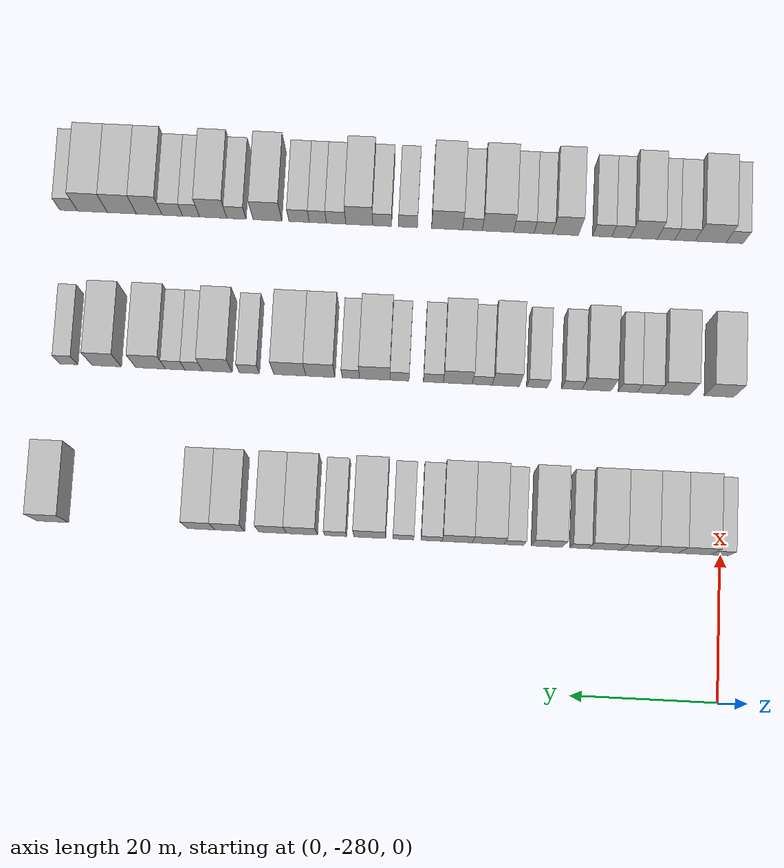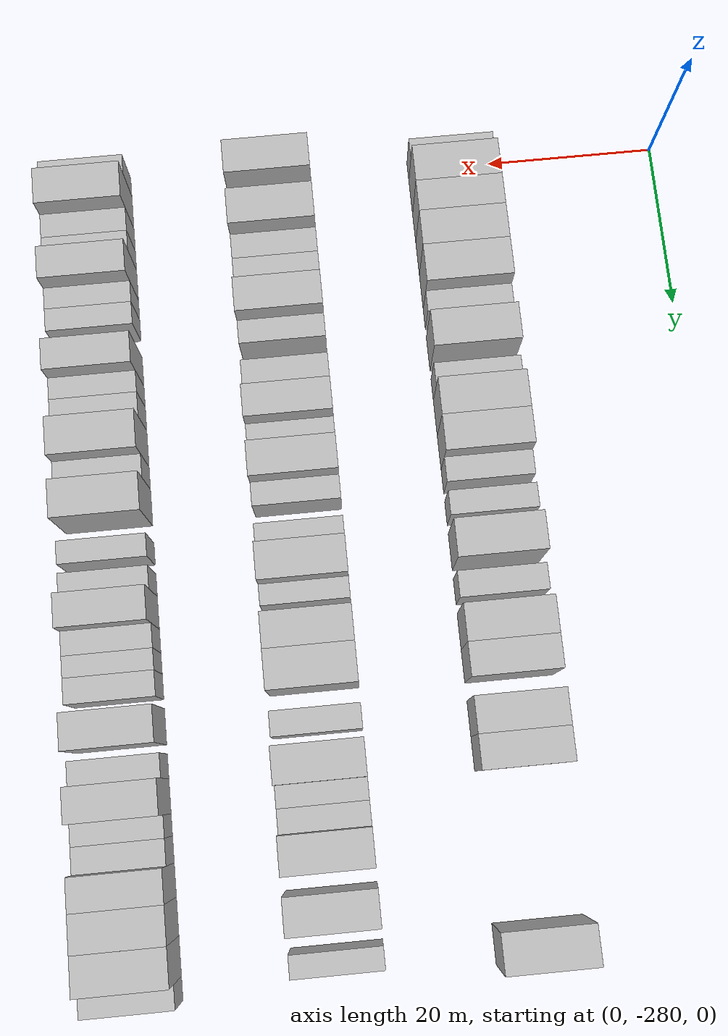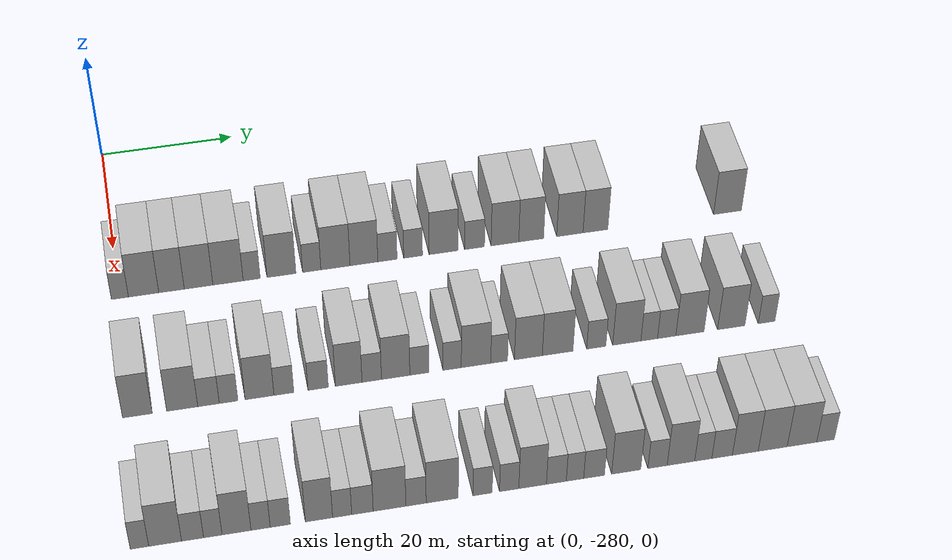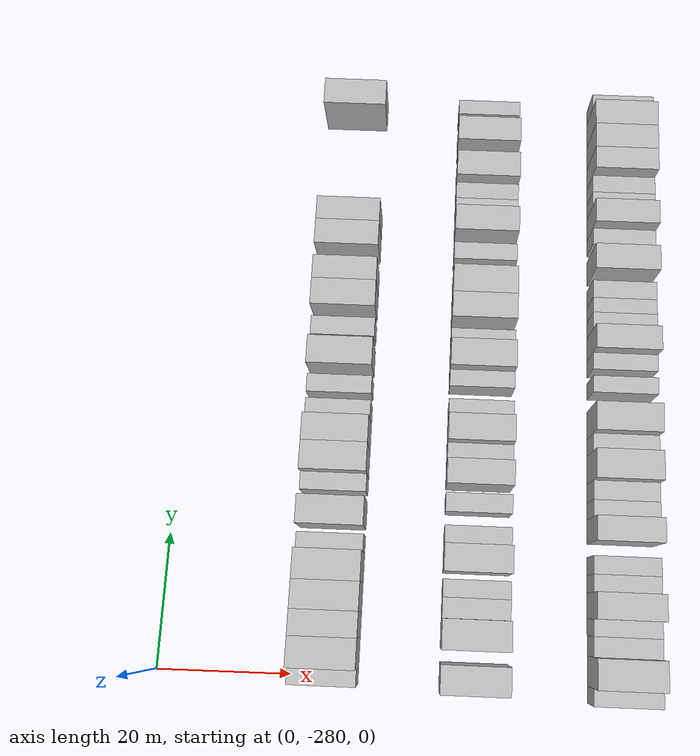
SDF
<sdf version="1.6">
 <world name="default">
  <model name="building_23">
   <static>1</static>
   <pose>25.0000 -279.8532 0 0.000000 0.000000 0.000000</pose>
   <link name="link">
    <pose>0 0 3.00 0 0 0</pose>
    <collision name="collision"><geometry><box><size>10.0000 2.4691 6.0000</size></box></geometry></collision>
    <visual name="visual">
     <cast_shadows>0</cast_shadows>
     <geometry><box><size>10.0000 2.4691 6.0000</size></box></geometry>
     <material>
      <script>
       <uri>model://HANNAS_wall/materials/scripts</uri>
       <uri>model://HANNAS_wall/materials/textures</uri>
       <name>vrc/HANNAS_wall</name>
      </script>
     </material>
    </visual>
   </link>
  </model>
  <model name="building_24">
   <static>1</static>
   <pose>25.0000 -276.4193 0 0.000000 0.000000 0.000000</pose>
   <link name="link">
    <pose>0 0 4.50 0 0 0</pose>
    <collision name="collision"><geometry><box><size>10.0000 4.3988 9.0000</size></box></geometry></collision>
    <visual name="visual">
     <cast_shadows>0</cast_shadows>
     <geometry><box><size>10.0000 4.3988 9.0000</size></box></geometry>
     <material>
      <script>
       <uri>model://HANNAS_wall/materials/scripts</uri>
       <uri>model://HANNAS_wall/materials/textures</uri>
       <name>vrc/HANNAS_wall</name>
      </script>
     </material>
    </visual>
   </link>
  </model>
  <model name="building_25">
   <static>1</static>
   <pose>25.0000 -272.3590 0 0.000000 0.000000 0.000000</pose>
   <link name="link">
    <pose>0 0 4.50 0 0 0</pose>
    <collision name="collision"><geometry><box><size>10.0000 3.7218 9.0000</size></box></geometry></collision>
    <visual name="visual">
     <cast_shadows>0</cast_shadows>
     <geometry><box><size>10.0000 3.7218 9.0000</size></box></geometry>
     <material>
      <script>
       <uri>model://HANNAS_wall/materials/scripts</uri>
       <uri>model://HANNAS_wall/materials/textures</uri>
       <name>vrc/HANNAS_wall</name>
      </script>
     </material>
    </visual>
   </link>
  </model>
  <model name="building_26">
   <static>1</static>
   <pose>25.0000 -268.4085 0 0.000000 0.000000 0.000000</pose>
   <link name="link">
    <pose>0 0 4.50 0 0 0</pose>
    <collision name="collision"><geometry><box><size>10.0000 4.1792 9.0000</size></box></geometry></collision>
    <visual name="visual">
     <cast_shadows>0</cast_shadows>
     <geometry><box><size>10.0000 4.1792 9.0000</size></box></geometry>
     <material>
      <script>
       <uri>model://HANNAS_wall/materials/scripts</uri>
       <uri>model://HANNAS_wall/materials/textures</uri>
       <name>vrc/HANNAS_wall</name>
      </script>
     </material>
    </visual>
   </link>
  </model>
  <model name="building_27">
   <static>1</static>
   <pose>25.0000 -264.0996 0 0.000000 0.000000 0.000000</pose>
   <link name="link">
    <pose>0 0 4.50 0 0 0</pose>
    <collision name="collision"><geometry><box><size>10.0000 4.4385 9.0000</size></box></geometry></collision>
    <visual name="visual">
     <cast_shadows>0</cast_shadows>
     <geometry><box><size>10.0000 4.4385 9.0000</size></box></geometry>
     <material>
      <script>
       <uri>model://HANNAS_wall/materials/scripts</uri>
       <uri>model://HANNAS_wall/materials/textures</uri>
       <name>vrc/HANNAS_wall</name>
      </script>
     </material>
    </visual>
   </link>
  </model>
  <model name="building_28">
   <static>1</static>
   <pose>25.0000 -260.6279 0 0.000000 0.000000 0.000000</pose>
   <link name="link">
    <pose>0 0 3.00 0 0 0</pose>
    <collision name="collision"><geometry><box><size>10.0000 2.5049 6.0000</size></box></geometry></collision>
    <visual name="visual">
     <cast_shadows>0</cast_shadows>
     <geometry><box><size>10.0000 2.5049 6.0000</size></box></geometry>
     <material>
      <script>
       <uri>model://HANNAS_wall/materials/scripts</uri>
       <uri>model://HANNAS_wall/materials/textures</uri>
       <name>vrc/HANNAS_wall</name>
      </script>
     </material>
    </visual>
   </link>
  </model>
  <model name="building_29">
   <static>1</static>
   <pose>25.0000 -256.2432 0 0.000000 0.000000 0.000000</pose>
   <link name="link">
    <pose>0 0 4.50 0 0 0</pose>
    <collision name="collision"><geometry><box><size>10.0000 4.2644 9.0000</size></box></geometry></collision>
    <visual name="visual">
     <cast_shadows>0</cast_shadows>
     <geometry><box><size>10.0000 4.2644 9.0000</size></box></geometry>
     <material>
      <script>
       <uri>model://HANNAS_wall/materials/scripts</uri>
       <uri>model://HANNAS_wall/materials/textures</uri>
       <name>vrc/HANNAS_wall</name>
      </script>
     </material>
    </visual>
   </link>
  </model>
  <model name="building_30">
   <static>1</static>
   <pose>25.0000 -251.7612 0 0.000000 0.000000 0.000000</pose>
   <link name="link">
    <pose>0 0 3.00 0 0 0</pose>
    <collision name="collision"><geometry><box><size>10.0000 2.6998 6.0000</size></box></geometry></collision>
    <visual name="visual">
     <cast_shadows>0</cast_shadows>
     <geometry><box><size>10.0000 2.6998 6.0000</size></box></geometry>
     <material>
      <script>
       <uri>model://HANNAS_wall/materials/scripts</uri>
       <uri>model://HANNAS_wall/materials/textures</uri>
       <name>vrc/HANNAS_wall</name>
      </script>
     </material>
    </visual>
   </link>
  </model>
  <model name="building_31">
   <static>1</static>
   <pose>25.0000 -248.2509 0 0.000000 0.000000 0.000000</pose>
   <link name="link">
    <pose>0 0 4.50 0 0 0</pose>
    <collision name="collision"><geometry><box><size>10.0000 4.3207 9.0000</size></box></geometry></collision>
    <visual name="visual">
     <cast_shadows>0</cast_shadows>
     <geometry><box><size>10.0000 4.3207 9.0000</size></box></geometry>
     <material>
      <script>
       <uri>model://HANNAS_wall/materials/scripts</uri>
       <uri>model://HANNAS_wall/materials/textures</uri>
       <name>vrc/HANNAS_wall</name>
      </script>
     </material>
    </visual>
   </link>
  </model>
  <model name="building_32">
   <static>1</static>
   <pose>25.0000 -244.0177 0 0.000000 0.000000 0.000000</pose>
   <link name="link">
    <pose>0 0 4.50 0 0 0</pose>
    <collision name="collision"><geometry><box><size>10.0000 4.1457 9.0000</size></box></geometry></collision>
    <visual name="visual">
     <cast_shadows>0</cast_shadows>
     <geometry><box><size>10.0000 4.1457 9.0000</size></box></geometry>
     <material>
      <script>
       <uri>model://HANNAS_wall/materials/scripts</uri>
       <uri>model://HANNAS_wall/materials/textures</uri>
       <name>vrc/HANNAS_wall</name>
      </script>
     </material>
    </visual>
   </link>
  </model>
  <model name="building_33">
   <static>1</static>
   <pose>25.0000 -240.5104 0 0.000000 0.000000 0.000000</pose>
   <link name="link">
    <pose>0 0 3.00 0 0 0</pose>
    <collision name="collision"><geometry><box><size>10.0000 2.8689 6.0000</size></box></geometry></collision>
    <visual name="visual">
     <cast_shadows>0</cast_shadows>
     <geometry><box><size>10.0000 2.8689 6.0000</size></box></geometry>
     <material>
      <script>
       <uri>model://HANNAS_wall/materials/scripts</uri>
       <uri>model://HANNAS_wall/materials/textures</uri>
       <name>vrc/HANNAS_wall</name>
      </script>
     </material>
    </visual>
   </link>
  </model>
  <model name="building_34">
   <static>1</static>
   <pose>25.0000 -236.6710 0 0.000000 0.000000 0.000000</pose>
   <link name="link">
    <pose>0 0 3.00 0 0 0</pose>
    <collision name="collision"><geometry><box><size>10.0000 2.8099 6.0000</size></box></geometry></collision>
    <visual name="visual">
     <cast_shadows>0</cast_shadows>
     <geometry><box><size>10.0000 2.8099 6.0000</size></box></geometry>
     <material>
      <script>
       <uri>model://HANNAS_wall/materials/scripts</uri>
       <uri>model://HANNAS_wall/materials/textures</uri>
       <name>vrc/HANNAS_wall</name>
      </script>
     </material>
    </visual>
   </link>
  </model>
  <model name="building_35">
   <static>1</static>
   <pose>25.0000 -232.0984 0 0.000000 0.000000 0.000000</pose>
   <link name="link">
    <pose>0 0 4.50 0 0 0</pose>
    <collision name="collision"><geometry><box><size>10.0000 4.3355 9.0000</size></box></geometry></collision>
    <visual name="visual">
     <cast_shadows>0</cast_shadows>
     <geometry><box><size>10.0000 4.3355 9.0000</size></box></geometry>
     <material>
      <script>
       <uri>model://HANNAS_wall/materials/scripts</uri>
       <uri>model://HANNAS_wall/materials/textures</uri>
       <name>vrc/HANNAS_wall</name>
      </script>
     </material>
    </visual>
   </link>
  </model>
  <model name="building_36">
   <static>1</static>
   <pose>25.0000 -227.4317 0 0.000000 0.000000 0.000000</pose>
   <link name="link">
    <pose>0 0 3.00 0 0 0</pose>
    <collision name="collision"><geometry><box><size>10.0000 2.9977 6.0000</size></box></geometry></collision>
    <visual name="visual">
     <cast_shadows>0</cast_shadows>
     <geometry><box><size>10.0000 2.9977 6.0000</size></box></geometry>
     <material>
      <script>
       <uri>model://HANNAS_wall/materials/scripts</uri>
       <uri>model://HANNAS_wall/materials/textures</uri>
       <name>vrc/HANNAS_wall</name>
      </script>
     </material>
    </visual>
   </link>
  </model>
  <model name="building_37">
   <static>1</static>
   <pose>25.0000 -222.8329 0 0.000000 0.000000 0.000000</pose>
   <link name="link">
    <pose>0 0 4.50 0 0 0</pose>
    <collision name="collision"><geometry><box><size>10.0000 4.2000 9.0000</size></box></geometry></collision>
    <visual name="visual">
     <cast_shadows>0</cast_shadows>
     <geometry><box><size>10.0000 4.2000 9.0000</size></box></geometry>
     <material>
      <script>
       <uri>model://HANNAS_wall/materials/scripts</uri>
       <uri>model://HANNAS_wall/materials/textures</uri>
       <name>vrc/HANNAS_wall</name>
      </script>
     </material>
    </visual>
   </link>
  </model>
  <model name="building_38">
   <static>1</static>
   <pose>25.0000 -218.8481 0 0.000000 0.000000 0.000000</pose>
   <link name="link">
    <pose>0 0 4.50 0 0 0</pose>
    <collision name="collision"><geometry><box><size>10.0000 3.7694 9.0000</size></box></geometry></collision>
    <visual name="visual">
     <cast_shadows>0</cast_shadows>
     <geometry><box><size>10.0000 3.7694 9.0000</size></box></geometry>
     <material>
      <script>
       <uri>model://HANNAS_wall/materials/scripts</uri>
       <uri>model://HANNAS_wall/materials/textures</uri>
       <name>vrc/HANNAS_wall</name>
      </script>
     </material>
    </visual>
   </link>
  </model>
  <model name="building_39">
   <static>1</static>
   <pose>25.0000 -212.9530 0 0.000000 0.000000 0.000000</pose>
   <link name="link">
    <pose>0 0 4.50 0 0 0</pose>
    <collision name="collision"><geometry><box><size>10.0000 4.0209 9.0000</size></box></geometry></collision>
    <visual name="visual">
     <cast_shadows>0</cast_shadows>
     <geometry><box><size>10.0000 4.0209 9.0000</size></box></geometry>
     <material>
      <script>
       <uri>model://HANNAS_wall/materials/scripts</uri>
       <uri>model://HANNAS_wall/materials/textures</uri>
       <name>vrc/HANNAS_wall</name>
      </script>
     </material>
    </visual>
   </link>
  </model>
  <model name="building_40">
   <static>1</static>
   <pose>25.0000 -209.0470 0 0.000000 0.000000 0.000000</pose>
   <link name="link">
    <pose>0 0 4.50 0 0 0</pose>
    <collision name="collision"><geometry><box><size>10.0000 3.7911 9.0000</size></box></geometry></collision>
    <visual name="visual">
     <cast_shadows>0</cast_shadows>
     <geometry><box><size>10.0000 3.7911 9.0000</size></box></geometry>
     <material>
      <script>
       <uri>model://HANNAS_wall/materials/scripts</uri>
       <uri>model://HANNAS_wall/materials/textures</uri>
       <name>vrc/HANNAS_wall</name>
      </script>
     </material>
    </visual>
   </link>
  </model>
  <model name="building_41">
   <static>1</static>
   <pose>25.0000 -188.6506 0 0.000000 0.000000 0.000000</pose>
   <link name="link">
    <pose>0 0 4.50 0 0 0</pose>
    <collision name="collision"><geometry><box><size>10.0000 4.3338 9.0000</size></box></geometry></collision>
    <visual name="visual">
     <cast_shadows>0</cast_shadows>
     <geometry><box><size>10.0000 4.3338 9.0000</size></box></geometry>
     <material>
      <script>
       <uri>model://HANNAS_wall/materials/scripts</uri>
       <uri>model://HANNAS_wall/materials/textures</uri>
       <name>vrc/HANNAS_wall</name>
      </script>
     </material>
    </visual>
   </link>
  </model>
  <model name="building_209">
   <static>1</static>
   <pose>47.0000 -279.3452 0 0.000000 0.000000 0.000000</pose>
   <link name="link">
    <pose>0 0 4.50 0 0 0</pose>
    <collision name="collision"><geometry><box><size>10.0000 4.1022 9.0000</size></box></geometry></collision>
    <visual name="visual">
     <cast_shadows>0</cast_shadows>
     <geometry><box><size>10.0000 4.1022 9.0000</size></box></geometry>
     <material>
      <script>
       <uri>model://HANNAS_wall/materials/scripts</uri>
       <uri>model://HANNAS_wall/materials/textures</uri>
       <name>vrc/HANNAS_wall</name>
      </script>
     </material>
    </visual>
   </link>
  </model>
  <model name="building_210">
   <static>1</static>
   <pose>47.0000 -273.1323 0 0.000000 0.000000 0.000000</pose>
   <link name="link">
    <pose>0 0 4.50 0 0 0</pose>
    <collision name="collision"><geometry><box><size>10.0000 4.3236 9.0000</size></box></geometry></collision>
    <visual name="visual">
     <cast_shadows>0</cast_shadows>
     <geometry><box><size>10.0000 4.3236 9.0000</size></box></geometry>
     <material>
      <script>
       <uri>model://HANNAS_wall/materials/scripts</uri>
       <uri>model://HANNAS_wall/materials/textures</uri>
       <name>vrc/HANNAS_wall</name>
      </script>
     </material>
    </visual>
   </link>
  </model>
  <model name="building_211">
   <static>1</static>
   <pose>47.0000 -269.4746 0 0.000000 0.000000 0.000000</pose>
   <link name="link">
    <pose>0 0 3.00 0 0 0</pose>
    <collision name="collision"><geometry><box><size>10.0000 2.9919 6.0000</size></box></geometry></collision>
    <visual name="visual">
     <cast_shadows>0</cast_shadows>
     <geometry><box><size>10.0000 2.9919 6.0000</size></box></geometry>
     <material>
      <script>
       <uri>model://HANNAS_wall/materials/scripts</uri>
       <uri>model://HANNAS_wall/materials/textures</uri>
       <name>vrc/HANNAS_wall</name>
      </script>
     </material>
    </visual>
   </link>
  </model>
  <model name="building_212">
   <static>1</static>
   <pose>47.0000 -266.6771 0 0.000000 0.000000 0.000000</pose>
   <link name="link">
    <pose>0 0 3.00 0 0 0</pose>
    <collision name="collision"><geometry><box><size>10.0000 2.6031 6.0000</size></box></geometry></collision>
    <visual name="visual">
     <cast_shadows>0</cast_shadows>
     <geometry><box><size>10.0000 2.6031 6.0000</size></box></geometry>
     <material>
      <script>
       <uri>model://HANNAS_wall/materials/scripts</uri>
       <uri>model://HANNAS_wall/materials/textures</uri>
       <name>vrc/HANNAS_wall</name>
      </script>
     </material>
    </visual>
   </link>
  </model>
  <model name="building_213">
   <static>1</static>
   <pose>47.0000 -262.3510 0 0.000000 0.000000 0.000000</pose>
   <link name="link">
    <pose>0 0 4.50 0 0 0</pose>
    <collision name="collision"><geometry><box><size>10.0000 4.0492 9.0000</size></box></geometry></collision>
    <visual name="visual">
     <cast_shadows>0</cast_shadows>
     <geometry><box><size>10.0000 4.0492 9.0000</size></box></geometry>
     <material>
      <script>
       <uri>model://HANNAS_wall/materials/scripts</uri>
       <uri>model://HANNAS_wall/materials/textures</uri>
       <name>vrc/HANNAS_wall</name>
      </script>
     </material>
    </visual>
   </link>
  </model>
  <model name="building_214">
   <static>1</static>
   <pose>47.0000 -258.9312 0 0.000000 0.000000 0.000000</pose>
   <link name="link">
    <pose>0 0 3.00 0 0 0</pose>
    <collision name="collision"><geometry><box><size>10.0000 2.7904 6.0000</size></box></geometry></collision>
    <visual name="visual">
     <cast_shadows>0</cast_shadows>
     <geometry><box><size>10.0000 2.7904 6.0000</size></box></geometry>
     <material>
      <script>
       <uri>model://HANNAS_wall/materials/scripts</uri>
       <uri>model://HANNAS_wall/materials/textures</uri>
       <name>vrc/HANNAS_wall</name>
      </script>
     </material>
    </visual>
   </link>
  </model>
  <model name="building_215">
   <static>1</static>
   <pose>47.0000 -254.1026 0 0.000000 0.000000 0.000000</pose>
   <link name="link">
    <pose>0 0 3.00 0 0 0</pose>
    <collision name="collision"><geometry><box><size>10.0000 2.8668 6.0000</size></box></geometry></collision>
    <visual name="visual">
     <cast_shadows>0</cast_shadows>
     <geometry><box><size>10.0000 2.8668 6.0000</size></box></geometry>
     <material>
      <script>
       <uri>model://HANNAS_wall/materials/scripts</uri>
       <uri>model://HANNAS_wall/materials/textures</uri>
       <name>vrc/HANNAS_wall</name>
      </script>
     </material>
    </visual>
   </link>
  </model>
  <model name="building_216">
   <static>1</static>
   <pose>47.0000 -249.7837 0 0.000000 0.000000 0.000000</pose>
   <link name="link">
    <pose>0 0 4.50 0 0 0</pose>
    <collision name="collision"><geometry><box><size>10.0000 3.7708 9.0000</size></box></geometry></collision>
    <visual name="visual">
     <cast_shadows>0</cast_shadows>
     <geometry><box><size>10.0000 3.7708 9.0000</size></box></geometry>
     <material>
      <script>
       <uri>model://HANNAS_wall/materials/scripts</uri>
       <uri>model://HANNAS_wall/materials/textures</uri>
       <name>vrc/HANNAS_wall</name>
      </script>
     </material>
    </visual>
   </link>
  </model>
  <model name="building_217">
   <static>1</static>
   <pose>47.0000 -246.5192 0 0.000000 0.000000 0.000000</pose>
   <link name="link">
    <pose>0 0 3.00 0 0 0</pose>
    <collision name="collision"><geometry><box><size>10.0000 2.7583 6.0000</size></box></geometry></collision>
    <visual name="visual">
     <cast_shadows>0</cast_shadows>
     <geometry><box><size>10.0000 2.7583 6.0000</size></box></geometry>
     <material>
      <script>
       <uri>model://HANNAS_wall/materials/scripts</uri>
       <uri>model://HANNAS_wall/materials/textures</uri>
       <name>vrc/HANNAS_wall</name>
      </script>
     </material>
    </visual>
   </link>
  </model>
  <model name="building_218">
   <static>1</static>
   <pose>47.0000 -243.1190 0 0.000000 0.000000 0.000000</pose>
   <link name="link">
    <pose>0 0 4.50 0 0 0</pose>
    <collision name="collision"><geometry><box><size>10.0000 4.0422 9.0000</size></box></geometry></collision>
    <visual name="visual">
     <cast_shadows>0</cast_shadows>
     <geometry><box><size>10.0000 4.0422 9.0000</size></box></geometry>
     <material>
      <script>
       <uri>model://HANNAS_wall/materials/scripts</uri>
       <uri>model://HANNAS_wall/materials/textures</uri>
       <name>vrc/HANNAS_wall</name>
      </script>
     </material>
    </visual>
   </link>
  </model>
  <model name="building_219">
   <static>1</static>
   <pose>47.0000 -239.7254 0 0.000000 0.000000 0.000000</pose>
   <link name="link">
    <pose>0 0 3.00 0 0 0</pose>
    <collision name="collision"><geometry><box><size>10.0000 2.7450 6.0000</size></box></geometry></collision>
    <visual name="visual">
     <cast_shadows>0</cast_shadows>
     <geometry><box><size>10.0000 2.7450 6.0000</size></box></geometry>
     <material>
      <script>
       <uri>model://HANNAS_wall/materials/scripts</uri>
       <uri>model://HANNAS_wall/materials/textures</uri>
       <name>vrc/HANNAS_wall</name>
      </script>
     </material>
    </visual>
   </link>
  </model>
  <model name="building_220">
   <static>1</static>
   <pose>47.0000 -235.0442 0 0.000000 0.000000 0.000000</pose>
   <link name="link">
    <pose>0 0 3.00 0 0 0</pose>
    <collision name="collision"><geometry><box><size>10.0000 2.6172 6.0000</size></box></geometry></collision>
    <visual name="visual">
     <cast_shadows>0</cast_shadows>
     <geometry><box><size>10.0000 2.6172 6.0000</size></box></geometry>
     <material>
      <script>
       <uri>model://HANNAS_wall/materials/scripts</uri>
       <uri>model://HANNAS_wall/materials/textures</uri>
       <name>vrc/HANNAS_wall</name>
      </script>
     </material>
    </visual>
   </link>
  </model>
  <model name="building_221">
   <static>1</static>
   <pose>47.0000 -231.6141 0 0.000000 0.000000 0.000000</pose>
   <link name="link">
    <pose>0 0 4.50 0 0 0</pose>
    <collision name="collision"><geometry><box><size>10.0000 4.2430 9.0000</size></box></geometry></collision>
    <visual name="visual">
     <cast_shadows>0</cast_shadows>
     <geometry><box><size>10.0000 4.2430 9.0000</size></box></geometry>
     <material>
      <script>
       <uri>model://HANNAS_wall/materials/scripts</uri>
       <uri>model://HANNAS_wall/materials/textures</uri>
       <name>vrc/HANNAS_wall</name>
      </script>
     </material>
    </visual>
   </link>
  </model>
  <model name="building_222">
   <static>1</static>
   <pose>47.0000 -228.2855 0 0.000000 0.000000 0.000000</pose>
   <link name="link">
    <pose>0 0 3.00 0 0 0</pose>
    <collision name="collision"><geometry><box><size>10.0000 2.4142 6.0000</size></box></geometry></collision>
    <visual name="visual">
     <cast_shadows>0</cast_shadows>
     <geometry><box><size>10.0000 2.4142 6.0000</size></box></geometry>
     <material>
      <script>
       <uri>model://HANNAS_wall/materials/scripts</uri>
       <uri>model://HANNAS_wall/materials/textures</uri>
       <name>vrc/HANNAS_wall</name>
      </script>
     </material>
    </visual>
   </link>
  </model>
  <model name="building_223">
   <static>1</static>
   <pose>47.0000 -224.0595 0 0.000000 0.000000 0.000000</pose>
   <link name="link">
    <pose>0 0 4.50 0 0 0</pose>
    <collision name="collision"><geometry><box><size>10.0000 4.0378 9.0000</size></box></geometry></collision>
    <visual name="visual">
     <cast_shadows>0</cast_shadows>
     <geometry><box><size>10.0000 4.0378 9.0000</size></box></geometry>
     <material>
      <script>
       <uri>model://HANNAS_wall/materials/scripts</uri>
       <uri>model://HANNAS_wall/materials/textures</uri>
       <name>vrc/HANNAS_wall</name>
      </script>
     </material>
    </visual>
   </link>
  </model>
  <model name="building_224">
   <static>1</static>
   <pose>47.0000 -219.8156 0 0.000000 0.000000 0.000000</pose>
   <link name="link">
    <pose>0 0 4.50 0 0 0</pose>
    <collision name="collision"><geometry><box><size>10.0000 4.4500 9.0000</size></box></geometry></collision>
    <visual name="visual">
     <cast_shadows>0</cast_shadows>
     <geometry><box><size>10.0000 4.4500 9.0000</size></box></geometry>
     <material>
      <script>
       <uri>model://HANNAS_wall/materials/scripts</uri>
       <uri>model://HANNAS_wall/materials/textures</uri>
       <name>vrc/HANNAS_wall</name>
      </script>
     </material>
    </visual>
   </link>
  </model>
  <model name="building_225">
   <static>1</static>
   <pose>47.0000 -214.1924 0 0.000000 0.000000 0.000000</pose>
   <link name="link">
    <pose>0 0 3.00 0 0 0</pose>
    <collision name="collision"><geometry><box><size>10.0000 2.7964 6.0000</size></box></geometry></collision>
    <visual name="visual">
     <cast_shadows>0</cast_shadows>
     <geometry><box><size>10.0000 2.7964 6.0000</size></box></geometry>
     <material>
      <script>
       <uri>model://HANNAS_wall/materials/scripts</uri>
       <uri>model://HANNAS_wall/materials/textures</uri>
       <name>vrc/HANNAS_wall</name>
      </script>
     </material>
    </visual>
   </link>
  </model>
  <model name="building_226">
   <static>1</static>
   <pose>47.0000 -209.7320 0 0.000000 0.000000 0.000000</pose>
   <link name="link">
    <pose>0 0 4.50 0 0 0</pose>
    <collision name="collision"><geometry><box><size>10.0000 4.1245 9.0000</size></box></geometry></collision>
    <visual name="visual">
     <cast_shadows>0</cast_shadows>
     <geometry><box><size>10.0000 4.1245 9.0000</size></box></geometry>
     <material>
      <script>
       <uri>model://HANNAS_wall/materials/scripts</uri>
       <uri>model://HANNAS_wall/materials/textures</uri>
       <name>vrc/HANNAS_wall</name>
      </script>
     </material>
    </visual>
   </link>
  </model>
  <model name="building_227">
   <static>1</static>
   <pose>47.0000 -206.4434 0 0.000000 0.000000 0.000000</pose>
   <link name="link">
    <pose>0 0 3.00 0 0 0</pose>
    <collision name="collision"><geometry><box><size>10.0000 2.4526 6.0000</size></box></geometry></collision>
    <visual name="visual">
     <cast_shadows>0</cast_shadows>
     <geometry><box><size>10.0000 2.4526 6.0000</size></box></geometry>
     <material>
      <script>
       <uri>model://HANNAS_wall/materials/scripts</uri>
       <uri>model://HANNAS_wall/materials/textures</uri>
       <name>vrc/HANNAS_wall</name>
      </script>
     </material>
    </visual>
   </link>
  </model>
  <model name="building_228">
   <static>1</static>
   <pose>47.0000 -203.8687 0 0.000000 0.000000 0.000000</pose>
   <link name="link">
    <pose>0 0 3.00 0 0 0</pose>
    <collision name="collision"><geometry><box><size>10.0000 2.6969 6.0000</size></box></geometry></collision>
    <visual name="visual">
     <cast_shadows>0</cast_shadows>
     <geometry><box><size>10.0000 2.6969 6.0000</size></box></geometry>
     <material>
      <script>
       <uri>model://HANNAS_wall/materials/scripts</uri>
       <uri>model://HANNAS_wall/materials/textures</uri>
       <name>vrc/HANNAS_wall</name>
      </script>
     </material>
    </visual>
   </link>
  </model>
  <model name="building_229">
   <static>1</static>
   <pose>47.0000 -200.4423 0 0.000000 0.000000 0.000000</pose>
   <link name="link">
    <pose>0 0 4.50 0 0 0</pose>
    <collision name="collision"><geometry><box><size>10.0000 4.1558 9.0000</size></box></geometry></collision>
    <visual name="visual">
     <cast_shadows>0</cast_shadows>
     <geometry><box><size>10.0000 4.1558 9.0000</size></box></geometry>
     <material>
      <script>
       <uri>model://HANNAS_wall/materials/scripts</uri>
       <uri>model://HANNAS_wall/materials/textures</uri>
       <name>vrc/HANNAS_wall</name>
      </script>
     </material>
    </visual>
   </link>
  </model>
  <model name="building_230">
   <static>1</static>
   <pose>47.0000 -194.3402 0 0.000000 0.000000 0.000000</pose>
   <link name="link">
    <pose>0 0 4.50 0 0 0</pose>
    <collision name="collision"><geometry><box><size>10.0000 4.0484 9.0000</size></box></geometry></collision>
    <visual name="visual">
     <cast_shadows>0</cast_shadows>
     <geometry><box><size>10.0000 4.0484 9.0000</size></box></geometry>
     <material>
      <script>
       <uri>model://HANNAS_wall/materials/scripts</uri>
       <uri>model://HANNAS_wall/materials/textures</uri>
       <name>vrc/HANNAS_wall</name>
      </script>
     </material>
    </visual>
   </link>
  </model>
  <model name="building_231">
   <static>1</static>
   <pose>47.0000 -189.0806 0 0.000000 0.000000 0.000000</pose>
   <link name="link">
    <pose>0 0 3.00 0 0 0</pose>
    <collision name="collision"><geometry><box><size>10.0000 2.4709 6.0000</size></box></geometry></collision>
    <visual name="visual">
     <cast_shadows>0</cast_shadows>
     <geometry><box><size>10.0000 2.4709 6.0000</size></box></geometry>
     <material>
      <script>
       <uri>model://HANNAS_wall/materials/scripts</uri>
       <uri>model://HANNAS_wall/materials/textures</uri>
       <name>vrc/HANNAS_wall</name>
      </script>
     </material>
    </visual>
   </link>
  </model>
  <model name="building_398">
   <static>1</static>
   <pose>69.0000 -281.1050 0 0.000000 0.000000 0.000000</pose>
   <link name="link">
    <pose>0 0 3.00 0 0 0</pose>
    <collision name="collision"><geometry><box><size>10.0000 2.4213 6.0000</size></box></geometry></collision>
    <visual name="visual">
     <cast_shadows>0</cast_shadows>
     <geometry><box><size>10.0000 2.4213 6.0000</size></box></geometry>
     <material>
      <script>
       <uri>model://HANNAS_wall/materials/scripts</uri>
       <uri>model://HANNAS_wall/materials/textures</uri>
       <name>vrc/HANNAS_wall</name>
      </script>
     </material>
    </visual>
   </link>
  </model>
  <model name="building_399">
   <static>1</static>
   <pose>69.0000 -277.7272 0 0.000000 0.000000 0.000000</pose>
   <link name="link">
    <pose>0 0 4.50 0 0 0</pose>
    <collision name="collision"><geometry><box><size>10.0000 4.3344 9.0000</size></box></geometry></collision>
    <visual name="visual">
     <cast_shadows>0</cast_shadows>
     <geometry><box><size>10.0000 4.3344 9.0000</size></box></geometry>
     <material>
      <script>
       <uri>model://HANNAS_wall/materials/scripts</uri>
       <uri>model://HANNAS_wall/materials/textures</uri>
       <name>vrc/HANNAS_wall</name>
      </script>
     </material>
    </visual>
   </link>
  </model>
  <model name="building_400">
   <static>1</static>
   <pose>69.0000 -274.1078 0 0.000000 0.000000 0.000000</pose>
   <link name="link">
    <pose>0 0 3.00 0 0 0</pose>
    <collision name="collision"><geometry><box><size>10.0000 2.9043 6.0000</size></box></geometry></collision>
    <visual name="visual">
     <cast_shadows>0</cast_shadows>
     <geometry><box><size>10.0000 2.9043 6.0000</size></box></geometry>
     <material>
      <script>
       <uri>model://HANNAS_wall/materials/scripts</uri>
       <uri>model://HANNAS_wall/materials/textures</uri>
       <name>vrc/HANNAS_wall</name>
      </script>
     </material>
    </visual>
   </link>
  </model>
  <model name="building_401">
   <static>1</static>
   <pose>69.0000 -271.4309 0 0.000000 0.000000 0.000000</pose>
   <link name="link">
    <pose>0 0 3.00 0 0 0</pose>
    <collision name="collision"><geometry><box><size>10.0000 2.4497 6.0000</size></box></geometry></collision>
    <visual name="visual">
     <cast_shadows>0</cast_shadows>
     <geometry><box><size>10.0000 2.4497 6.0000</size></box></geometry>
     <material>
      <script>
       <uri>model://HANNAS_wall/materials/scripts</uri>
       <uri>model://HANNAS_wall/materials/textures</uri>
       <name>vrc/HANNAS_wall</name>
      </script>
     </material>
    </visual>
   </link>
  </model>
  <model name="building_402">
   <static>1</static>
   <pose>69.0000 -268.2842 0 0.000000 0.000000 0.000000</pose>
   <link name="link">
    <pose>0 0 4.50 0 0 0</pose>
    <collision name="collision"><geometry><box><size>10.0000 3.8438 9.0000</size></box></geometry></collision>
    <visual name="visual">
     <cast_shadows>0</cast_shadows>
     <geometry><box><size>10.0000 3.8438 9.0000</size></box></geometry>
     <material>
      <script>
       <uri>model://HANNAS_wall/materials/scripts</uri>
       <uri>model://HANNAS_wall/materials/textures</uri>
       <name>vrc/HANNAS_wall</name>
      </script>
     </material>
    </visual>
   </link>
  </model>
  <model name="building_403">
   <static>1</static>
   <pose>69.0000 -265.0827 0 0.000000 0.000000 0.000000</pose>
   <link name="link">
    <pose>0 0 3.00 0 0 0</pose>
    <collision name="collision"><geometry><box><size>10.0000 2.5592 6.0000</size></box></geometry></collision>
    <visual name="visual">
     <cast_shadows>0</cast_shadows>
     <geometry><box><size>10.0000 2.5592 6.0000</size></box></geometry>
     <material>
      <script>
       <uri>model://HANNAS_wall/materials/scripts</uri>
       <uri>model://HANNAS_wall/materials/textures</uri>
       <name>vrc/HANNAS_wall</name>
      </script>
     </material>
    </visual>
   </link>
  </model>
  <model name="building_404">
   <static>1</static>
   <pose>69.0000 -262.4571 0 0.000000 0.000000 0.000000</pose>
   <link name="link">
    <pose>0 0 3.00 0 0 0</pose>
    <collision name="collision"><geometry><box><size>10.0000 2.6919 6.0000</size></box></geometry></collision>
    <visual name="visual">
     <cast_shadows>0</cast_shadows>
     <geometry><box><size>10.0000 2.6919 6.0000</size></box></geometry>
     <material>
      <script>
       <uri>model://HANNAS_wall/materials/scripts</uri>
       <uri>model://HANNAS_wall/materials/textures</uri>
       <name>vrc/HANNAS_wall</name>
      </script>
     </material>
    </visual>
   </link>
  </model>
  <model name="building_405">
   <static>1</static>
   <pose>69.0000 -257.2832 0 0.000000 0.000000 0.000000</pose>
   <link name="link">
    <pose>0 0 4.50 0 0 0</pose>
    <collision name="collision"><geometry><box><size>10.0000 3.6561 9.0000</size></box></geometry></collision>
    <visual name="visual">
     <cast_shadows>0</cast_shadows>
     <geometry><box><size>10.0000 3.6561 9.0000</size></box></geometry>
     <material>
      <script>
       <uri>model://HANNAS_wall/materials/scripts</uri>
       <uri>model://HANNAS_wall/materials/textures</uri>
       <name>vrc/HANNAS_wall</name>
      </script>
     </material>
    </visual>
   </link>
  </model>
  <model name="building_406">
   <static>1</static>
   <pose>69.0000 -254.1717 0 0.000000 0.000000 0.000000</pose>
   <link name="link">
    <pose>0 0 3.00 0 0 0</pose>
    <collision name="collision"><geometry><box><size>10.0000 2.5669 6.0000</size></box></geometry></collision>
    <visual name="visual">
     <cast_shadows>0</cast_shadows>
     <geometry><box><size>10.0000 2.5669 6.0000</size></box></geometry>
     <material>
      <script>
       <uri>model://HANNAS_wall/materials/scripts</uri>
       <uri>model://HANNAS_wall/materials/textures</uri>
       <name>vrc/HANNAS_wall</name>
      </script>
     </material>
    </visual>
   </link>
  </model>
  <model name="building_407">
   <static>1</static>
   <pose>69.0000 -251.4372 0 0.000000 0.000000 0.000000</pose>
   <link name="link">
    <pose>0 0 3.00 0 0 0</pose>
    <collision name="collision"><geometry><box><size>10.0000 2.9021 6.0000</size></box></geometry></collision>
    <visual name="visual">
     <cast_shadows>0</cast_shadows>
     <geometry><box><size>10.0000 2.9021 6.0000</size></box></geometry>
     <material>
      <script>
       <uri>model://HANNAS_wall/materials/scripts</uri>
       <uri>model://HANNAS_wall/materials/textures</uri>
       <name>vrc/HANNAS_wall</name>
      </script>
     </material>
    </visual>
   </link>
  </model>
  <model name="building_408">
   <static>1</static>
   <pose>69.0000 -247.7794 0 0.000000 0.000000 0.000000</pose>
   <link name="link">
    <pose>0 0 4.50 0 0 0</pose>
    <collision name="collision"><geometry><box><size>10.0000 4.4135 9.0000</size></box></geometry></collision>
    <visual name="visual">
     <cast_shadows>0</cast_shadows>
     <geometry><box><size>10.0000 4.4135 9.0000</size></box></geometry>
     <material>
      <script>
       <uri>model://HANNAS_wall/materials/scripts</uri>
       <uri>model://HANNAS_wall/materials/textures</uri>
       <name>vrc/HANNAS_wall</name>
      </script>
     </material>
    </visual>
   </link>
  </model>
  <model name="building_409">
   <static>1</static>
   <pose>69.0000 -244.1957 0 0.000000 0.000000 0.000000</pose>
   <link name="link">
    <pose>0 0 3.00 0 0 0</pose>
    <collision name="collision"><geometry><box><size>10.0000 2.7539 6.0000</size></box></geometry></collision>
    <visual name="visual">
     <cast_shadows>0</cast_shadows>
     <geometry><box><size>10.0000 2.7539 6.0000</size></box></geometry>
     <material>
      <script>
       <uri>model://HANNAS_wall/materials/scripts</uri>
       <uri>model://HANNAS_wall/materials/textures</uri>
       <name>vrc/HANNAS_wall</name>
      </script>
     </material>
    </visual>
   </link>
  </model>
  <model name="building_410">
   <static>1</static>
   <pose>69.0000 -240.6339 0 0.000000 0.000000 0.000000</pose>
   <link name="link">
    <pose>0 0 4.50 0 0 0</pose>
    <collision name="collision"><geometry><box><size>10.0000 4.3698 9.0000</size></box></geometry></collision>
    <visual name="visual">
     <cast_shadows>0</cast_shadows>
     <geometry><box><size>10.0000 4.3698 9.0000</size></box></geometry>
     <material>
      <script>
       <uri>model://HANNAS_wall/materials/scripts</uri>
       <uri>model://HANNAS_wall/materials/textures</uri>
       <name>vrc/HANNAS_wall</name>
      </script>
     </material>
    </visual>
   </link>
  </model>
  <model name="building_411">
   <static>1</static>
   <pose>69.0000 -235.1321 0 0.000000 0.000000 0.000000</pose>
   <link name="link">
    <pose>0 0 3.00 0 0 0</pose>
    <collision name="collision"><geometry><box><size>10.0000 2.6337 6.0000</size></box></geometry></collision>
    <visual name="visual">
     <cast_shadows>0</cast_shadows>
     <geometry><box><size>10.0000 2.6337 6.0000</size></box></geometry>
     <material>
      <script>
       <uri>model://HANNAS_wall/materials/scripts</uri>
       <uri>model://HANNAS_wall/materials/textures</uri>
       <name>vrc/HANNAS_wall</name>
      </script>
     </material>
    </visual>
   </link>
  </model>
  <model name="building_412">
   <static>1</static>
   <pose>69.0000 -231.4895 0 0.000000 0.000000 0.000000</pose>
   <link name="link">
    <pose>0 0 3.00 0 0 0</pose>
    <collision name="collision"><geometry><box><size>10.0000 2.6515 6.0000</size></box></geometry></collision>
    <visual name="visual">
     <cast_shadows>0</cast_shadows>
     <geometry><box><size>10.0000 2.6515 6.0000</size></box></geometry>
     <material>
      <script>
       <uri>model://HANNAS_wall/materials/scripts</uri>
       <uri>model://HANNAS_wall/materials/textures</uri>
       <name>vrc/HANNAS_wall</name>
      </script>
     </material>
    </visual>
   </link>
  </model>
  <model name="building_413">
   <static>1</static>
   <pose>69.0000 -228.2636 0 0.000000 0.000000 0.000000</pose>
   <link name="link">
    <pose>0 0 4.50 0 0 0</pose>
    <collision name="collision"><geometry><box><size>10.0000 3.8003 9.0000</size></box></geometry></collision>
    <visual name="visual">
     <cast_shadows>0</cast_shadows>
     <geometry><box><size>10.0000 3.8003 9.0000</size></box></geometry>
     <material>
      <script>
       <uri>model://HANNAS_wall/materials/scripts</uri>
       <uri>model://HANNAS_wall/materials/textures</uri>
       <name>vrc/HANNAS_wall</name>
      </script>
     </material>
    </visual>
   </link>
  </model>
  <model name="building_414">
   <static>1</static>
   <pose>69.0000 -224.9918 0 0.000000 0.000000 0.000000</pose>
   <link name="link">
    <pose>0 0 3.00 0 0 0</pose>
    <collision name="collision"><geometry><box><size>10.0000 2.7434 6.0000</size></box></geometry></collision>
    <visual name="visual">
     <cast_shadows>0</cast_shadows>
     <geometry><box><size>10.0000 2.7434 6.0000</size></box></geometry>
     <material>
      <script>
       <uri>model://HANNAS_wall/materials/scripts</uri>
       <uri>model://HANNAS_wall/materials/textures</uri>
       <name>vrc/HANNAS_wall</name>
      </script>
     </material>
    </visual>
   </link>
  </model>
  <model name="building_415">
   <static>1</static>
   <pose>69.0000 -222.4182 0 0.000000 0.000000 0.000000</pose>
   <link name="link">
    <pose>0 0 3.00 0 0 0</pose>
    <collision name="collision"><geometry><box><size>10.0000 2.4037 6.0000</size></box></geometry></collision>
    <visual name="visual">
     <cast_shadows>0</cast_shadows>
     <geometry><box><size>10.0000 2.4037 6.0000</size></box></geometry>
     <material>
      <script>
       <uri>model://HANNAS_wall/materials/scripts</uri>
       <uri>model://HANNAS_wall/materials/textures</uri>
       <name>vrc/HANNAS_wall</name>
      </script>
     </material>
    </visual>
   </link>
  </model>
  <model name="building_416">
   <static>1</static>
   <pose>69.0000 -219.7784 0 0.000000 0.000000 0.000000</pose>
   <link name="link">
    <pose>0 0 3.00 0 0 0</pose>
    <collision name="collision"><geometry><box><size>10.0000 2.8759 6.0000</size></box></geometry></collision>
    <visual name="visual">
     <cast_shadows>0</cast_shadows>
     <geometry><box><size>10.0000 2.8759 6.0000</size></box></geometry>
     <material>
      <script>
       <uri>model://HANNAS_wall/materials/scripts</uri>
       <uri>model://HANNAS_wall/materials/textures</uri>
       <name>vrc/HANNAS_wall</name>
      </script>
     </material>
    </visual>
   </link>
  </model>
  <model name="building_417">
   <static>1</static>
   <pose>69.0000 -215.3192 0 0.000000 0.000000 0.000000</pose>
   <link name="link">
    <pose>0 0 4.50 0 0 0</pose>
    <collision name="collision"><geometry><box><size>10.0000 4.0424 9.0000</size></box></geometry></collision>
    <visual name="visual">
     <cast_shadows>0</cast_shadows>
     <geometry><box><size>10.0000 4.0424 9.0000</size></box></geometry>
     <material>
      <script>
       <uri>model://HANNAS_wall/materials/scripts</uri>
       <uri>model://HANNAS_wall/materials/textures</uri>
       <name>vrc/HANNAS_wall</name>
      </script>
     </material>
    </visual>
   </link>
  </model>
  <model name="building_418">
   <static>1</static>
   <pose>69.0000 -210.9488 0 0.000000 0.000000 0.000000</pose>
   <link name="link">
    <pose>0 0 3.00 0 0 0</pose>
    <collision name="collision"><geometry><box><size>10.0000 2.6984 6.0000</size></box></geometry></collision>
    <visual name="visual">
     <cast_shadows>0</cast_shadows>
     <geometry><box><size>10.0000 2.6984 6.0000</size></box></geometry>
     <material>
      <script>
       <uri>model://HANNAS_wall/materials/scripts</uri>
       <uri>model://HANNAS_wall/materials/textures</uri>
       <name>vrc/HANNAS_wall</name>
      </script>
     </material>
    </visual>
   </link>
  </model>
  <model name="building_419">
   <static>1</static>
   <pose>69.0000 -207.6689 0 0.000000 0.000000 0.000000</pose>
   <link name="link">
    <pose>0 0 4.50 0 0 0</pose>
    <collision name="collision"><geometry><box><size>10.0000 3.8614 9.0000</size></box></geometry></collision>
    <visual name="visual">
     <cast_shadows>0</cast_shadows>
     <geometry><box><size>10.0000 3.8614 9.0000</size></box></geometry>
     <material>
      <script>
       <uri>model://HANNAS_wall/materials/scripts</uri>
       <uri>model://HANNAS_wall/materials/textures</uri>
       <name>vrc/HANNAS_wall</name>
      </script>
     </material>
    </visual>
   </link>
  </model>
  <model name="building_420">
   <static>1</static>
   <pose>69.0000 -204.5357 0 0.000000 0.000000 0.000000</pose>
   <link name="link">
    <pose>0 0 3.00 0 0 0</pose>
    <collision name="collision"><geometry><box><size>10.0000 2.4050 6.0000</size></box></geometry></collision>
    <visual name="visual">
     <cast_shadows>0</cast_shadows>
     <geometry><box><size>10.0000 2.4050 6.0000</size></box></geometry>
     <material>
      <script>
       <uri>model://HANNAS_wall/materials/scripts</uri>
       <uri>model://HANNAS_wall/materials/textures</uri>
       <name>vrc/HANNAS_wall</name>
      </script>
     </material>
    </visual>
   </link>
  </model>
  <model name="building_421">
   <static>1</static>
   <pose>69.0000 -201.8880 0 0.000000 0.000000 0.000000</pose>
   <link name="link">
    <pose>0 0 3.00 0 0 0</pose>
    <collision name="collision"><geometry><box><size>10.0000 2.8904 6.0000</size></box></geometry></collision>
    <visual name="visual">
     <cast_shadows>0</cast_shadows>
     <geometry><box><size>10.0000 2.8904 6.0000</size></box></geometry>
     <material>
      <script>
       <uri>model://HANNAS_wall/materials/scripts</uri>
       <uri>model://HANNAS_wall/materials/textures</uri>
       <name>vrc/HANNAS_wall</name>
      </script>
     </material>
    </visual>
   </link>
  </model>
  <model name="building_422">
   <static>1</static>
   <pose>69.0000 -198.6200 0 0.000000 0.000000 0.000000</pose>
   <link name="link">
    <pose>0 0 4.50 0 0 0</pose>
    <collision name="collision"><geometry><box><size>10.0000 3.6456 9.0000</size></box></geometry></collision>
    <visual name="visual">
     <cast_shadows>0</cast_shadows>
     <geometry><box><size>10.0000 3.6456 9.0000</size></box></geometry>
     <material>
      <script>
       <uri>model://HANNAS_wall/materials/scripts</uri>
       <uri>model://HANNAS_wall/materials/textures</uri>
       <name>vrc/HANNAS_wall</name>
      </script>
     </material>
    </visual>
   </link>
  </model>
  <model name="building_423">
   <static>1</static>
   <pose>69.0000 -194.7469 0 0.000000 0.000000 0.000000</pose>
   <link name="link">
    <pose>0 0 4.50 0 0 0</pose>
    <collision name="collision"><geometry><box><size>10.0000 4.1006 9.0000</size></box></geometry></collision>
    <visual name="visual">
     <cast_shadows>0</cast_shadows>
     <geometry><box><size>10.0000 4.1006 9.0000</size></box></geometry>
     <material>
      <script>
       <uri>model://HANNAS_wall/materials/scripts</uri>
       <uri>model://HANNAS_wall/materials/textures</uri>
       <name>vrc/HANNAS_wall</name>
      </script>
     </material>
    </visual>
   </link>
  </model>
  <model name="building_424">
   <static>1</static>
   <pose>69.0000 -190.5960 0 0.000000 0.000000 0.000000</pose>
   <link name="link">
    <pose>0 0 4.50 0 0 0</pose>
    <collision name="collision"><geometry><box><size>10.0000 4.2011 9.0000</size></box></geometry></collision>
    <visual name="visual">
     <cast_shadows>0</cast_shadows>
     <geometry><box><size>10.0000 4.2011 9.0000</size></box></geometry>
     <material>
      <script>
       <uri>model://HANNAS_wall/materials/scripts</uri>
       <uri>model://HANNAS_wall/materials/textures</uri>
       <name>vrc/HANNAS_wall</name>
      </script>
     </material>
    </visual>
   </link>
  </model>
  <model name="building_425">
   <static>1</static>
   <pose>69.0000 -187.2413 0 0.000000 0.000000 0.000000</pose>
   <link name="link">
    <pose>0 0 3.00 0 0 0</pose>
    <collision name="collision"><geometry><box><size>10.0000 2.5083 6.0000</size></box></geometry></collision>
    <visual name="visual">
     <cast_shadows>0</cast_shadows>
     <geometry><box><size>10.0000 2.5083 6.0000</size></box></geometry>
     <material>
      <script>
       <uri>model://HANNAS_wall/materials/scripts</uri>
       <uri>model://HANNAS_wall/materials/textures</uri>
       <name>vrc/HANNAS_wall</name>
      </script>
     </material>
    </visual>
   </link>
  </model>
 </world>
</sdf>
